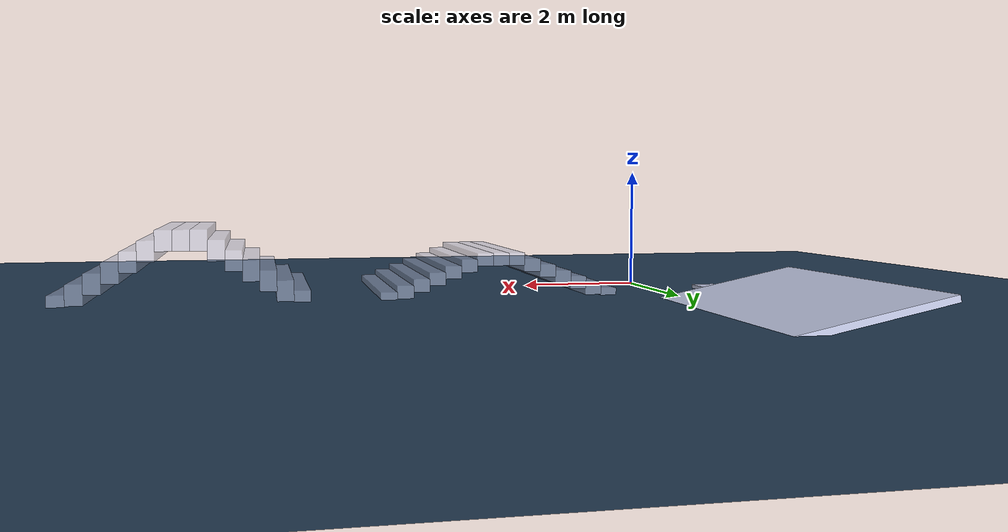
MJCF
<mujoco>
  <asset>
    <texture type="skybox" builtin="gradient" rgb1="0.3 0.5 0.7" rgb2="0 0 0" width="512" height="3072"/>
    <texture type="2d" name="groundplane" builtin="checker" mark="edge" rgb1="0.2 0.3 0.4" rgb2="0.1 0.2 0.3" markrgb="0.8 0.8 0.8" width="300" height="300"/>
    <material name="groundplane" texture="groundplane" texuniform="true" texrepeat="5 5" reflectance="0.2"/>
  </asset>

  <default>
    <!-- 主摩擦降低以避免数值问题，保留各向异性 -->
    <!-- 高刚度、临界阻尼 -->
    <!-- 柔和接触过渡，限制反弹 -->
    <geom friction="1.8 0.1 0.01" solref="0.02 1" solimp="0.8 0.99 0.001 0.3 1"/>
    <light castshadow="false" diffuse="1 1 1"/>
    <camera fovy="60"/>
  </default>

<worldbody>
    <light pos="0 0 1.5" dir="0 0 -1" directional="true"/>
    <geom name="geom_floor" size="0 0 0.05" type="plane" material="groundplane"/>
</worldbody>

<!-- stairs: 10cm-->
<worldbody>
    <geom type="box" pos= "1.00 0 0.00" size="0.13 1.5 0.10" rgba="0.79216 0.81961 0.93333 0.5" solref="1e-3 1"/>
    <geom type="box" pos= "1.26 0 0.10" size="0.13 1.5 0.10" rgba="0.79216 0.81961 0.93333 0.5" solref="1e-3 1"/>
    <geom type="box" pos= "1.52 0 0.20" size="0.13 1.5 0.10" rgba="0.79216 0.81961 0.93333 0.5" solref="1e-3 1"/>
    <geom type="box" pos= "1.78 0 0.30" size="0.13 1.5 0.10" rgba="0.79216 0.81961 0.93333 0.5" solref="1e-3 1"/>
    <geom type="box" pos= "2.04 0 0.40" size="0.13 1.5 0.10" rgba="0.79216 0.81961 0.93333 0.5" solref="1e-3 1"/>
    <geom type="box" pos= "2.30 0 0.50" size="0.13 1.5 0.10" rgba="0.79216 0.81961 0.93333 0.5" solref="1e-3 1"/>
    <geom type="box" pos= "2.56 0 0.60" size="0.13 1.5 0.10" rgba="0.79216 0.81961 0.93333 0.5" solref="1e-3 1"/>

    <geom type="box" pos= "2.82 0 0.60" size="0.13 1.5 0.10" rgba="0.79216 0.81961 0.93333 0.5" solref="1e-3 1"/>

    <geom type="box" pos= "3.08 0 0.60" size="0.13 1.5 0.10" rgba="0.79216 0.81961 0.93333 0.5" solref="1e-3 1"/>
    <geom type="box" pos= "3.34 0 0.50" size="0.13 1.5 0.10" rgba="0.79216 0.81961 0.93333 0.5" solref="1e-3 1"/>
    <geom type="box" pos= "3.60 0 0.40" size="0.13 1.5 0.10" rgba="0.79216 0.81961 0.93333 0.5" solref="1e-3 1"/>
    <geom type="box" pos= "3.86 0 0.30" size="0.13 1.5 0.10" rgba="0.79216 0.81961 0.93333 0.5" solref="1e-3 1"/>
    <geom type="box" pos= "4.12 0 0.20" size="0.13 1.5 0.10" rgba="0.79216 0.81961 0.93333 0.5" solref="1e-3 1"/>
    <geom type="box" pos= "4.38 0 0.10" size="0.13 1.5 0.10" rgba="0.79216 0.81961 0.93333 0.5" solref="1e-3 1"/>
    <geom type="box" pos= "4.64 0 0.00" size="0.13 1.5 0.10" rgba="0.79216 0.81961 0.93333 0.5" solref="1e-3 1"/>
</worldbody>

<!-- stairs: 16cm-->
<worldbody>
    <geom type="box" pos= "6.00 0 0.00" size="0.13 1.5 0.16" rgba="0.79216 0.81961 0.93333 0.5" solref="1e-3 1"/>
    <geom type="box" pos= "6.26 0 0.16" size="0.13 1.5 0.16" rgba="0.79216 0.81961 0.93333 0.5" solref="1e-3 1"/>
    <geom type="box" pos= "6.52 0 0.32" size="0.13 1.5 0.16" rgba="0.79216 0.81961 0.93333 0.5" solref="1e-3 1"/>
    <geom type="box" pos= "6.78 0 0.48" size="0.13 1.5 0.16" rgba="0.79216 0.81961 0.93333 0.5" solref="1e-3 1"/>
    <geom type="box" pos= "7.04 0 0.64" size="0.13 1.5 0.16" rgba="0.79216 0.81961 0.93333 0.5" solref="1e-3 1"/>
    <geom type="box" pos= "7.30 0 0.80" size="0.13 1.5 0.16" rgba="0.79216 0.81961 0.93333 0.5" solref="1e-3 1"/>
    <geom type="box" pos= "7.56 0 0.96" size="0.13 1.5 0.16" rgba="0.79216 0.81961 0.93333 0.5" solref="1e-3 1"/>

    <geom type="box" pos= "7.82 0 0.96" size="0.13 1.5 0.16" rgba="0.79216 0.81961 0.93333 0.5" solref="1e-3 1"/>

    <geom type="box" pos= "8.08 0 0.96" size="0.13 1.5 0.16" rgba="0.79216 0.81961 0.93333 0.5" solref="1e-3 1"/>
    <geom type="box" pos= "8.34 0 0.80" size="0.13 1.5 0.16" rgba="0.79216 0.81961 0.93333 0.5" solref="1e-3 1"/>
    <geom type="box" pos= "8.60 0 0.64" size="0.13 1.5 0.16" rgba="0.79216 0.81961 0.93333 0.5" solref="1e-3 1"/>
    <geom type="box" pos= "8.86 0 0.48" size="0.13 1.5 0.16" rgba="0.79216 0.81961 0.93333 0.5" solref="1e-3 1"/>
    <geom type="box" pos= "9.12 0 0.32" size="0.13 1.5 0.16" rgba="0.79216 0.81961 0.93333 0.5" solref="1e-3 1"/>
    <geom type="box" pos= "9.38 0 0.16" size="0.13 1.5 0.16" rgba="0.79216 0.81961 0.93333 0.5" solref="1e-3 1"/>
    <geom type="box" pos= "9.64 0 0.00" size="0.13 1.5 0.16" rgba="0.79216 0.81961 0.93333 0.5" solref="1e-3 1"/>
</worldbody>

<!-- platform-->
<worldbody>
    <geom type="box" pos= "-1 1 0" size="0.2 0.2 0.05" rgba="0.79216 0.81961 0.93333 1" solref="1e-3 1"/>
</worldbody>

<!-- slope-->
<worldbody>
    <geom type="box" pos= "0 4 0" quat="1 0 0.1 0" size="2 2 0.05" rgba="0.79216 0.81961 0.93333 1" solref="1e-3 1"/>
</worldbody>

<!-- stairs-->

</mujoco>
